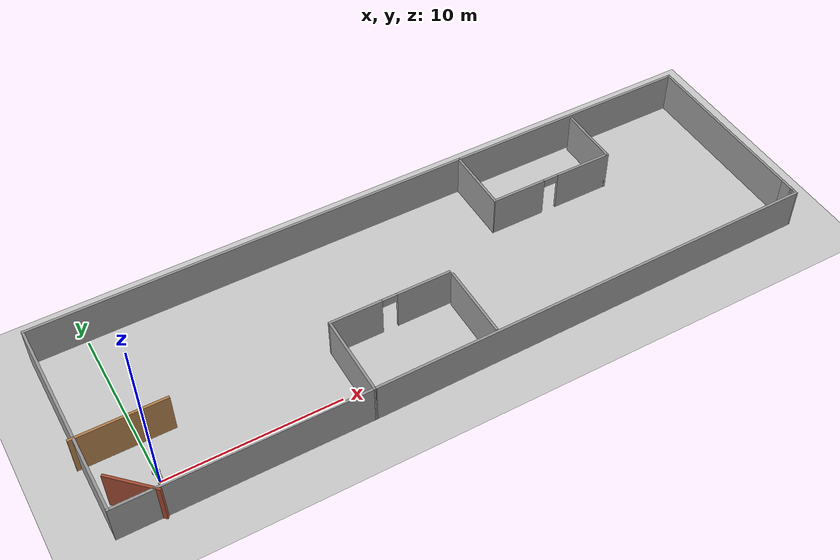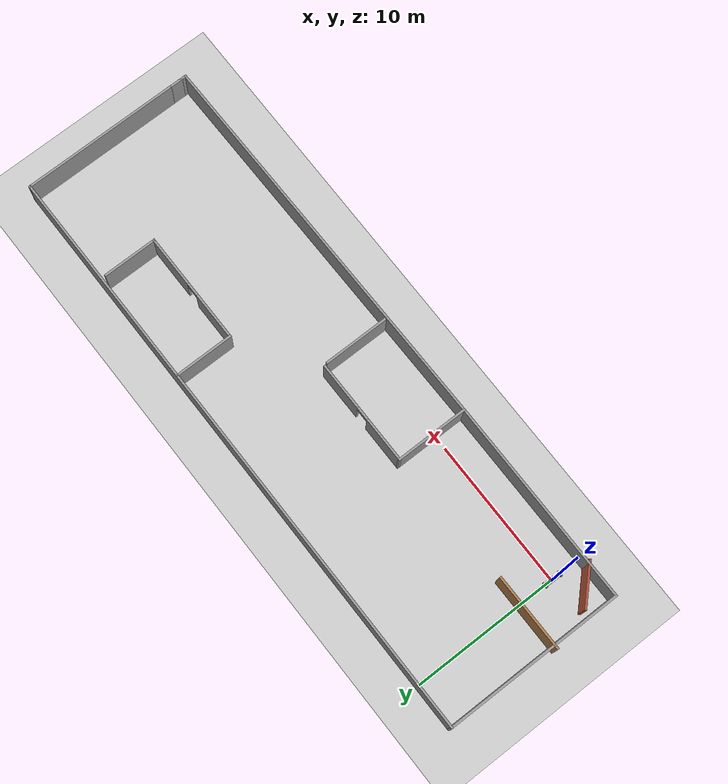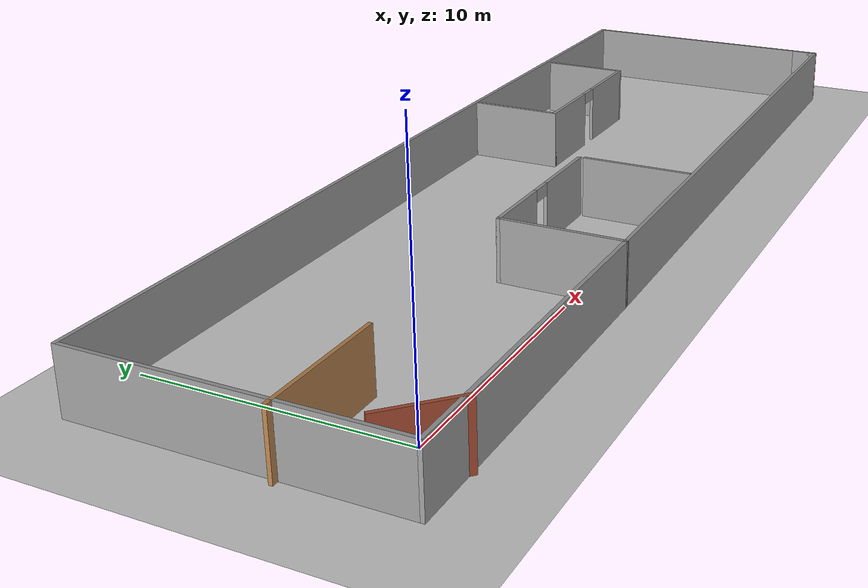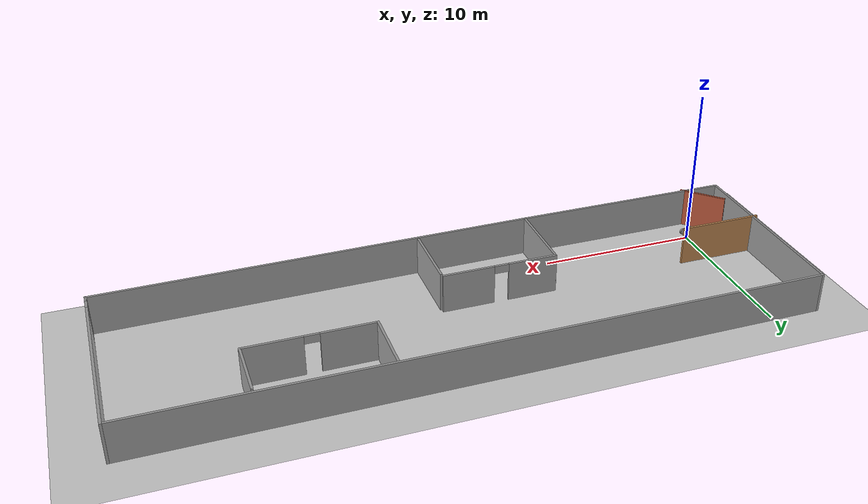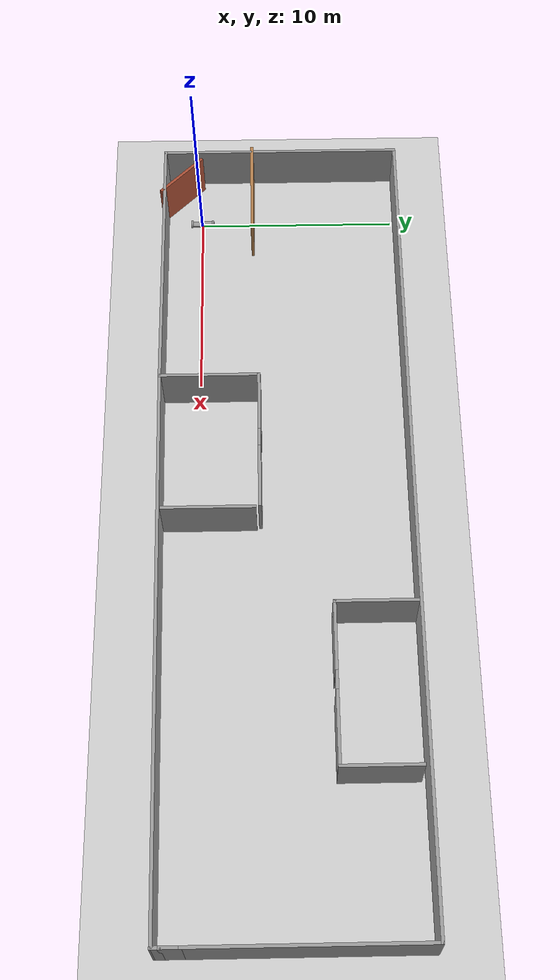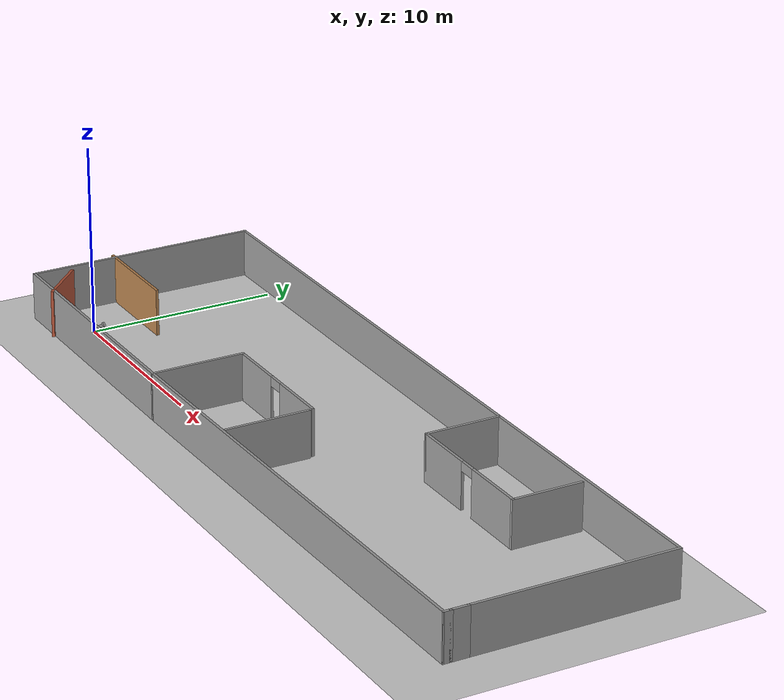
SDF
<sdf version="1.6">
 <world name="default">
  <model name="ground_plane">
   <static>1</static>
   <link name="link">
    <collision name="collision">
     <geometry><plane><normal>0 0 1</normal><size>100 100</size></plane></geometry>
     <surface>
      <contact><collide_bitmask>65535</collide_bitmask></contact>
      <friction><ode><mu>100</mu><mu2>50</mu2></ode></friction>
     </surface>
    </collision>
    <visual name="visual">
     <cast_shadows>0</cast_shadows>
     <geometry><plane><normal>0 0 1</normal><size>100 100</size></plane></geometry>
     <material>
      <script><uri>file://media/materials/scripts/gazebo.material</uri><name>Gazebo/Grey</name></script>
     </material>
    </visual>
   </link>
  </model>
  <model name="first-robot">
   <link name="link">
    <pose>0 -0 0.2 0 -0 0</pose>
    <inertial>
     <mass>1</mass>
     <inertia>
      <ixx>0.166667</ixx>
      <ixy>0</ixy>
      <ixz>0</ixz>
      <iyy>0.166667</iyy>
      <iyz>0</iyz>
      <izz>0.166667</izz>
     </inertia>
    </inertial>
    <visual name="visual">
     <geometry><box><size>0.3 1 0.1</size></box></geometry>
     <material>
      <script><name>Gazebo/Grey</name><uri>file://media/materials/scripts/gazebo.material</uri></script>
      <shader type="pixel"><normal_map>__default__</normal_map></shader>
      <ambient>0.3 0.3 0.3 1</ambient>
      <diffuse>0.7 0.7 0.7 1</diffuse>
      <specular>0.01 0.01 0.01 1</specular>
      <emissive>0 0 0 1</emissive>
     </material>
    </visual>
    <collision name="collision">
     <geometry><box><size>0.3 1 0.1</size></box></geometry>
     <surface>
      <friction>
       <ode><mu>1</mu><mu2>1</mu2><fdir1>0 0 0</fdir1><slip1>0</slip1><slip2>0</slip2></ode>
       <torsional>
        <coefficient>1</coefficient>
        <patch_radius>0</patch_radius>
        <surface_radius>0</surface_radius>
        <use_patch_radius>1</use_patch_radius>
        <ode><slip>0</slip></ode>
       </torsional>
      </friction>
      <bounce><restitution_coefficient>0</restitution_coefficient><threshold>1e+06</threshold></bounce>
      <contact>
       <collide_without_contact>0</collide_without_contact>
       <collide_without_contact_bitmask>1</collide_without_contact_bitmask>
       <collide_bitmask>1</collide_bitmask>
       <ode>
        <soft_cfm>0</soft_cfm>
        <soft_erp>0.2</soft_erp>
        <kp>1e+13</kp>
        <kd>1</kd>
        <max_vel>0.01</max_vel>
        <min_depth>0</min_depth>
       </ode>
       <bullet>
        <split_impulse>1</split_impulse>
        <split_impulse_penetration_threshold>-0.01</split_impulse_penetration_threshold>
        <soft_cfm>0</soft_cfm>
        <soft_erp>0.2</soft_erp>
        <kp>1e+13</kp>
        <kd>1</kd>
       </bullet>
      </contact>
     </surface>
    </collision>
   </link>
   <link name="link_0_clone">
    <pose>0 -0.550511 0.199999 1.5707 -0 0</pose>
    <inertial>
     <mass>1</mass>
     <inertia><ixx>0.145833</ixx><ixy>0</ixy><ixz>0</ixz><iyy>0.145833</iyy><iyz>0</iyz><izz>0.125</izz></inertia>
     <pose>0 0 0.2 0 -0 0</pose>
    </inertial>
    <visual name="visual">
     <geometry><cylinder><radius>0.2</radius><length>0.1</length></cylinder></geometry>
     <material>
      <lighting>1</lighting>
      <script><uri>file://media/materials/scripts/gazebo.material</uri><name>Gazebo/Grey</name></script>
      <shader type="pixel"><normal_map>__default__</normal_map></shader>
      <ambient>0.3 0.3 0.3 1</ambient>
      <diffuse>0.7 0.7 0.7 1</diffuse>
      <specular>0.01 0.01 0.01 1</specular>
      <emissive>0 0 0 1</emissive>
     </material>
    </visual>
    <collision name="collision">
     <geometry><cylinder><radius>0.2</radius><length>0.1</length></cylinder></geometry>
     <surface>
      <friction>
       <ode><mu>1</mu><mu2>1</mu2><fdir1>0 0 0</fdir1><slip1>0</slip1><slip2>0</slip2></ode>
       <torsional>
        <coefficient>1</coefficient>
        <patch_radius>0</patch_radius>
        <surface_radius>0</surface_radius>
        <use_patch_radius>1</use_patch_radius>
        <ode><slip>0</slip></ode>
       </torsional>
      </friction>
      <bounce><restitution_coefficient>0</restitution_coefficient><threshold>1e+06</threshold></bounce>
      <contact>
       <collide_without_contact>0</collide_without_contact>
       <collide_without_contact_bitmask>1</collide_without_contact_bitmask>
       <collide_bitmask>1</collide_bitmask>
       <ode>
        <soft_cfm>0</soft_cfm>
        <soft_erp>0.2</soft_erp>
        <kp>1e+13</kp>
        <kd>1</kd>
        <max_vel>0.01</max_vel>
        <min_depth>0</min_depth>
       </ode>
       <bullet>
        <split_impulse>1</split_impulse>
        <split_impulse_penetration_threshold>-0.01</split_impulse_penetration_threshold>
        <soft_cfm>0</soft_cfm>
        <soft_erp>0.2</soft_erp>
        <kp>1e+13</kp>
        <kd>1</kd>
       </bullet>
      </contact>
     </surface>
    </collision>
   </link>
   <link name="link_0_clone_clone">
    <pose>0 0.550019 0.2 1.5707 -0 0</pose>
    <inertial>
     <mass>1</mass>
     <inertia><ixx>0.145833</ixx><ixy>0</ixy><ixz>0</ixz><iyy>0.145833</iyy><iyz>0</iyz><izz>0.125</izz></inertia>
     <pose>0 0 0.2 0 -0 0</pose>
    </inertial>
    <visual name="visual">
     <geometry><cylinder><radius>0.2</radius><length>0.1</length></cylinder></geometry>
     <material>
      <lighting>1</lighting>
      <script><uri>file://media/materials/scripts/gazebo.material</uri><name>Gazebo/Grey</name></script>
      <shader type="pixel"><normal_map>__default__</normal_map></shader>
      <ambient>0.3 0.3 0.3 1</ambient>
      <diffuse>0.7 0.7 0.7 1</diffuse>
      <specular>0.01 0.01 0.01 1</specular>
      <emissive>0 0 0 1</emissive>
     </material>
    </visual>
    <collision name="collision">
     <geometry><cylinder><radius>0.2</radius><length>0.1</length></cylinder></geometry>
     <surface>
      <friction>
       <ode><mu>1</mu><mu2>1</mu2><fdir1>0 0 0</fdir1><slip1>0</slip1><slip2>0</slip2></ode>
       <torsional>
        <coefficient>1</coefficient>
        <patch_radius>0</patch_radius>
        <surface_radius>0</surface_radius>
        <use_patch_radius>1</use_patch_radius>
        <ode><slip>0</slip></ode>
       </torsional>
      </friction>
      <bounce><restitution_coefficient>0</restitution_coefficient><threshold>1e+06</threshold></bounce>
      <contact>
       <collide_without_contact>0</collide_without_contact>
       <collide_without_contact_bitmask>1</collide_without_contact_bitmask>
       <collide_bitmask>1</collide_bitmask>
       <ode>
        <soft_cfm>0</soft_cfm>
        <soft_erp>0.2</soft_erp>
        <kp>1e+13</kp>
        <kd>1</kd>
        <max_vel>0.01</max_vel>
        <min_depth>0</min_depth>
       </ode>
       <bullet>
        <split_impulse>1</split_impulse>
        <split_impulse_penetration_threshold>-0.01</split_impulse_penetration_threshold>
        <soft_cfm>0</soft_cfm>
        <soft_erp>0.2</soft_erp>
        <kp>1e+13</kp>
        <kd>1</kd>
       </bullet>
      </contact>
     </surface>
    </collision>
   </link>
   <joint name="link_JOINT_0" type="revolute">
    <parent>link</parent>
    <child>link_0_clone</child>
    <pose>0 0 0 0 0.01 0</pose>
    <axis>
     <xyz>0 0 1</xyz>
     <use_parent_model_frame>0</use_parent_model_frame>
     <limit>
      <lower>-1.79769e+308</lower>
      <upper>1.79769e+308</upper>
      <effort>-1</effort>
      <velocity>-1</velocity>
     </limit>
     <dynamics>
      <spring_reference>0</spring_reference>
      <spring_stiffness>0</spring_stiffness>
      <damping>0</damping>
     </dynamics>
    </axis>
    <physics>
     <ode><limit><cfm>0</cfm><erp>0.2</erp></limit><suspension><cfm>0</cfm><erp>0.2</erp></suspension></ode>
    </physics>
   </joint>
   <joint name="link_JOINT_1" type="revolute">
    <parent>link</parent>
    <child>link_0_clone</child>
    <axis>
     <xyz>1 0 0</xyz>
     <use_parent_model_frame>0</use_parent_model_frame>
     <limit>
      <lower>-1.79769e+308</lower>
      <upper>1.79769e+308</upper>
      <effort>-1</effort>
      <velocity>-1</velocity>
     </limit>
     <dynamics>
      <spring_reference>0</spring_reference>
      <spring_stiffness>0</spring_stiffness>
      <damping>0</damping>
      <friction>0</friction>
     </dynamics>
    </axis>
    <physics>
     <ode><limit><cfm>0</cfm><erp>0.2</erp></limit><suspension><cfm>0</cfm><erp>0.2</erp></suspension></ode>
    </physics>
   </joint>
   <joint name="link_JOINT_6" type="revolute">
    <parent>link</parent>
    <child>link_0_clone_clone</child>
    <axis>
     <xyz>0 0 1</xyz>
     <use_parent_model_frame>0</use_parent_model_frame>
     <limit>
      <lower>-1.79769e+308</lower>
      <upper>1.79769e+308</upper>
      <effort>-1</effort>
      <velocity>-1</velocity>
     </limit>
     <dynamics>
      <spring_reference>0</spring_reference>
      <spring_stiffness>0</spring_stiffness>
      <damping>0</damping>
      <friction>0</friction>
     </dynamics>
    </axis>
    <physics>
     <ode><limit><cfm>0</cfm><erp>0.2</erp></limit><suspension><cfm>0</cfm><erp>0.2</erp></suspension></ode>
    </physics>
   </joint>
   <static>0</static>
   <pose>-6e-05 -0.010346 5e-06 -1e-06 0.000575 0.000112</pose>
  </model>
  <model name="house">
   <pose>17.4454 4.16959 0 0 -0 0</pose>
   <link name="Wall_0">
    <collision name="Wall_0_Collision">
     <geometry><box><size>14 0.15 2.5</size></box></geometry>
     <pose>0 0 1.25 0 -0 0</pose>
    </collision>
    <visual name="Wall_0_Visual">
     <pose>0 0 1.25 0 -0 0</pose>
     <geometry><box><size>14 0.15 2.5</size></box></geometry>
     <material>
      <script><uri>file://media/materials/scripts/gazebo.material</uri><name>Gazebo/Grey</name></script>
      <ambient>1 1 1 1</ambient>
     </material>
     <meta><layer>0</layer></meta>
    </visual>
    <pose>-13.5004 -6.04959 0 0 -0 0</pose>
   </link>
   <link name="Wall_1">
    <collision name="Wall_1_Collision">
     <geometry><box><size>5 0.15 2.5</size></box></geometry>
     <pose>0 0 1.25 0 -0 0</pose>
    </collision>
    <visual name="Wall_1_Visual">
     <pose>0 0 1.25 0 -0 0</pose>
     <geometry><box><size>5 0.15 2.5</size></box></geometry>
     <material>
      <script><uri>file://media/materials/scripts/gazebo.material</uri><name>Gazebo/Grey</name></script>
      <ambient>1 1 1 1</ambient>
     </material>
     <meta><layer>0</layer></meta>
    </visual>
    <pose>-6.57541 -3.62459 0 0 -0 1.5708</pose>
   </link>
   <link name="Wall_11">
    <collision name="Wall_11_Collision">
     <geometry><box><size>4.5 0.15 2.5</size></box></geometry>
     <pose>0 0 1.25 0 -0 0</pose>
    </collision>
    <visual name="Wall_11_Visual">
     <pose>0 0 1.25 0 -0 0</pose>
     <geometry><box><size>4.5 0.15 2.5</size></box></geometry>
     <material>
      <script><uri>file://media/materials/scripts/gazebo.material</uri><name>Gazebo/Grey</name></script>
      <ambient>1 1 1 1</ambient>
     </material>
     <meta><layer>0</layer></meta>
    </visual>
    <pose>0.623938 -3.61704 0 0 0 -1.5708</pose>
   </link>
   <link name="Wall_13">
    <collision name="Wall_13_Collision">
     <geometry><box><size>4 0.15 2.5</size></box></geometry>
     <pose>0 0 1.25 0 -0 0</pose>
    </collision>
    <visual name="Wall_13_Visual">
     <pose>0 0 1.25 0 -0 0</pose>
     <geometry><box><size>4 0.15 2.5</size></box></geometry>
     <material>
      <script><uri>file://media/materials/scripts/gazebo.material</uri><name>Gazebo/Grey</name></script>
      <ambient>1 1 1 1</ambient>
     </material>
     <meta><layer>0</layer></meta>
    </visual>
    <pose>5.45036 4.05823 0 0 0 -1.5708</pose>
   </link>
   <link name="Wall_14">
    <pose>9.25037 2.13323 0 0 -0 0</pose>
    <visual name="Wall_14_Visual_0">
     <pose>-2.20618 0 1.25 0 -0 0</pose>
     <geometry><box><size>3.33764 0.15 2.5</size></box></geometry>
     <material>
      <script><uri>file://media/materials/scripts/gazebo.material</uri><name>Gazebo/Grey</name></script>
      <ambient>1 1 1 1</ambient>
     </material>
     <meta><layer>0</layer></meta>
    </visual>
    <collision name="Wall_14_Collision_0">
     <geometry><box><size>3.33764 0.15 2.5</size></box></geometry>
     <pose>-2.20618 0 1.25 0 -0 0</pose>
    </collision>
    <visual name="Wall_14_Visual_1">
     <pose>2.11882 0 1.25 0 -0 0</pose>
     <geometry><box><size>3.51236 0.15 2.5</size></box></geometry>
     <material>
      <script><uri>file://media/materials/scripts/gazebo.material</uri><name>Gazebo/Grey</name></script>
      <ambient>1 1 1 1</ambient>
     </material>
     <meta><layer>0</layer></meta>
    </visual>
    <collision name="Wall_14_Collision_1">
     <geometry><box><size>3.51236 0.15 2.5</size></box></geometry>
     <pose>2.11882 0 1.25 0 -0 0</pose>
    </collision>
    <visual name="Wall_14_Visual_2">
     <pose>-0.087364 0 2.25 0 -0 0</pose>
     <geometry><box><size>0.9 0.15 0.5</size></box></geometry>
     <material>
      <script><uri>file://media/materials/scripts/gazebo.material</uri><name>Gazebo/Grey</name></script>
      <ambient>1 1 1 1</ambient>
     </material>
     <meta><layer>0</layer></meta>
    </visual>
    <collision name="Wall_14_Collision_2">
     <geometry><box><size>0.9 0.15 0.5</size></box></geometry>
     <pose>-0.087364 0 2.25 0 -0 0</pose>
    </collision>
   </link>
   <link name="Wall_15">
    <collision name="Wall_15_Collision">
     <geometry><box><size>3.75 0.15 2.5</size></box></geometry>
     <pose>0 0 1.25 0 -0 0</pose>
    </collision>
    <visual name="Wall_15_Visual">
     <pose>0 0 1.25 0 -0 0</pose>
     <geometry><box><size>3.75 0.15 2.5</size></box></geometry>
     <material>
      <script><uri>file://media/materials/scripts/gazebo.material</uri><name>Gazebo/Grey</name></script>
      <ambient>1 1 1 1</ambient>
     </material>
     <meta><layer>0</layer></meta>
    </visual>
    <pose>13.0504 3.93323 0 0 -0 1.5708</pose>
   </link>
   <link name="Wall_17">
    <pose>-3.02542 -1.19959 0 0 -0 0</pose>
    <visual name="Wall_17_Visual_0">
     <pose>-2.06914 0 1.25 0 -0 0</pose>
     <geometry><box><size>3.11172 0.15 2.5</size></box></geometry>
     <material>
      <script><uri>file://media/materials/scripts/gazebo.material</uri><name>Gazebo/Grey</name></script>
      <ambient>1 1 1 1</ambient>
     </material>
     <meta><layer>0</layer></meta>
    </visual>
    <collision name="Wall_17_Collision_0">
     <geometry><box><size>3.11172 0.15 2.5</size></box></geometry>
     <pose>-2.06914 0 1.25 0 -0 0</pose>
    </collision>
    <visual name="Wall_17_Visual_1">
     <pose>2.00586 0 1.25 0 -0 0</pose>
     <geometry><box><size>3.23828 0.15 2.5</size></box></geometry>
     <material>
      <script><uri>file://media/materials/scripts/gazebo.material</uri><name>Gazebo/Grey</name></script>
      <ambient>1 1 1 1</ambient>
     </material>
     <meta><layer>0</layer></meta>
    </visual>
    <collision name="Wall_17_Collision_1">
     <geometry><box><size>3.23828 0.15 2.5</size></box></geometry>
     <pose>2.00586 0 1.25 0 -0 0</pose>
    </collision>
    <visual name="Wall_17_Visual_2">
     <pose>-0.063283 0 2.25 0 -0 0</pose>
     <geometry><box><size>0.9 0.15 0.5</size></box></geometry>
     <material>
      <script><uri>file://media/materials/scripts/gazebo.material</uri><name>Gazebo/Grey</name></script>
      <ambient>1 1 1 1</ambient>
     </material>
     <meta><layer>0</layer></meta>
    </visual>
    <collision name="Wall_17_Collision_2">
     <geometry><box><size>0.9 0.15 0.5</size></box></geometry>
     <pose>-0.063283 0 2.25 0 -0 0</pose>
    </collision>
   </link>
   <link name="Wall_4">
    <collision name="Wall_4_Collision">
     <geometry><box><size>12.25 0.15 2.5</size></box></geometry>
     <pose>0 0 1.25 0 -0 0</pose>
    </collision>
    <visual name="Wall_4_Visual">
     <pose>0 0 1.25 0 -0 0</pose>
     <geometry><box><size>12.25 0.15 2.5</size></box></geometry>
     <material>
      <script><uri>file://media/materials/scripts/gazebo.material</uri><name>Gazebo/Grey</name></script>
      <ambient>1 1 1 1</ambient>
     </material>
     <meta><layer>0</layer></meta>
    </visual>
    <pose>-20.4254 0.000414 0 0 -0 1.5708</pose>
   </link>
   <link name="Wall_5">
    <collision name="Wall_5_Collision">
     <geometry><box><size>41 0.15 2.5</size></box></geometry>
     <pose>0 0 1.25 0 -0 0</pose>
    </collision>
    <visual name="Wall_5_Visual">
     <pose>0 0 1.25 0 -0 0</pose>
     <geometry><box><size>41 0.15 2.5</size></box></geometry>
     <material>
      <script><uri>file://media/materials/scripts/gazebo.material</uri><name>Gazebo/Grey</name></script>
      <ambient>1 1 1 1</ambient>
     </material>
     <meta><layer>0</layer></meta>
    </visual>
    <pose>-0.000416 6.05041 0 0 -0 0</pose>
   </link>
   <link name="Wall_6">
    <collision name="Wall_6_Collision">
     <geometry><box><size>10.75 0.15 2.5</size></box></geometry>
     <pose>0 0 1.25 0 -0 0</pose>
    </collision>
    <visual name="Wall_6_Visual">
     <pose>0 0 1.25 0 -0 0</pose>
     <geometry><box><size>10.75 0.15 2.5</size></box></geometry>
     <material>
      <script><uri>file://media/materials/scripts/gazebo.material</uri><name>Gazebo/Grey</name></script>
      <ambient>1 1 1 1</ambient>
     </material>
     <meta><layer>0</layer></meta>
    </visual>
    <pose>20.4246 0.750414 0 0 0 -1.5708</pose>
   </link>
   <link name="Wall_7">
    <collision name="Wall_7_Collision">
     <geometry><box><size>1 0.15 2.5</size></box></geometry>
     <pose>0 0 1.25 0 -0 0</pose>
    </collision>
    <visual name="Wall_7_Visual">
     <pose>0 0 1.25 0 -0 0</pose>
     <geometry><box><size>1 0.15 2.5</size></box></geometry>
     <material>
      <script><uri>file://media/materials/scripts/gazebo.material</uri><name>Gazebo/Grey</name></script>
      <ambient>1 1 1 1</ambient>
     </material>
     <meta><layer>0</layer></meta>
    </visual>
    <pose>20.4246 -4.97459 0 0 0 -1.5708</pose>
   </link>
   <link name="Wall_8">
    <collision name="Wall_8_Collision">
     <geometry><box><size>0.5 0.15 2.5</size></box></geometry>
     <pose>0 0 1.25 0 -0 0</pose>
    </collision>
    <visual name="Wall_8_Visual">
     <pose>0 0 1.25 0 -0 0</pose>
     <geometry><box><size>0.5 0.15 2.5</size></box></geometry>
     <material>
      <script><uri>file://media/materials/scripts/gazebo.material</uri><name>Gazebo/Grey</name></script>
      <ambient>1 1 1 1</ambient>
     </material>
     <meta><layer>0</layer></meta>
    </visual>
    <pose>20.4246 -5.57459 0 0 0 -1.5708</pose>
   </link>
   <link name="Wall_9">
    <collision name="Wall_9_Collision">
     <geometry><box><size>27.1517 0.15 2.5</size></box></geometry>
     <pose>0 0 1.25 0 -0 0</pose>
    </collision>
    <visual name="Wall_9_Visual">
     <pose>0 0 1.25 0 -0 0</pose>
     <geometry><box><size>27.1517 0.15 2.5</size></box></geometry>
     <material>
      <script><uri>file://media/materials/scripts/gazebo.material</uri><name>Gazebo/Grey</name></script>
      <ambient>1 1 1 1</ambient>
     </material>
     <meta><layer>0</layer></meta>
    </visual>
    <pose>6.92459 -5.89959 0 0 0 -3.13048</pose>
   </link>
   <static>1</static>
  </model>
  <model name="Addons">
   <pose>-0.673653 0.316522 0 0 -0 0</pose>
   <link name="Wall_0">
    <collision name="Wall_0_Collision">
     <geometry><box><size>3 0.15 2.5</size></box></geometry>
     <pose>0 0 1.25 0 -0 0</pose>
    </collision>
    <visual name="Wall_0_Visual">
     <pose>0 0 1.25 0 -0 0</pose>
     <geometry><box><size>3 0.15 2.5</size></box></geometry>
     <material>
      <script><uri>file://media/materials/scripts/gazebo.material</uri><name>Gazebo/Bricks</name></script>
      <ambient>0.435294 0.796078 0.67451 1</ambient>
     </material>
     <meta><layer>0</layer></meta>
    </visual>
    <pose>-0.813974 -1.32889 0 0 -0 2.35619</pose>
   </link>
   <link name="Wall_2">
    <collision name="Wall_2_Collision">
     <geometry><box><size>5.25 0.15 2.5</size></box></geometry>
     <pose>0 0 1.25 0 -0 0</pose>
    </collision>
    <visual name="Wall_2_Visual">
     <pose>0 0 1.25 0 -0 0</pose>
     <geometry><box><size>5.25 0.15 2.5</size></box></geometry>
     <material>
      <script><uri>file://media/materials/scripts/gazebo.material</uri><name>Gazebo/Wood</name></script>
      <ambient>1 1 1 1</ambient>
     </material>
     <meta><layer>0</layer></meta>
    </visual>
    <pose>0 2.36759 0 0 -0 0</pose>
   </link>
   <static>1</static>
  </model>
 </world>
</sdf>
